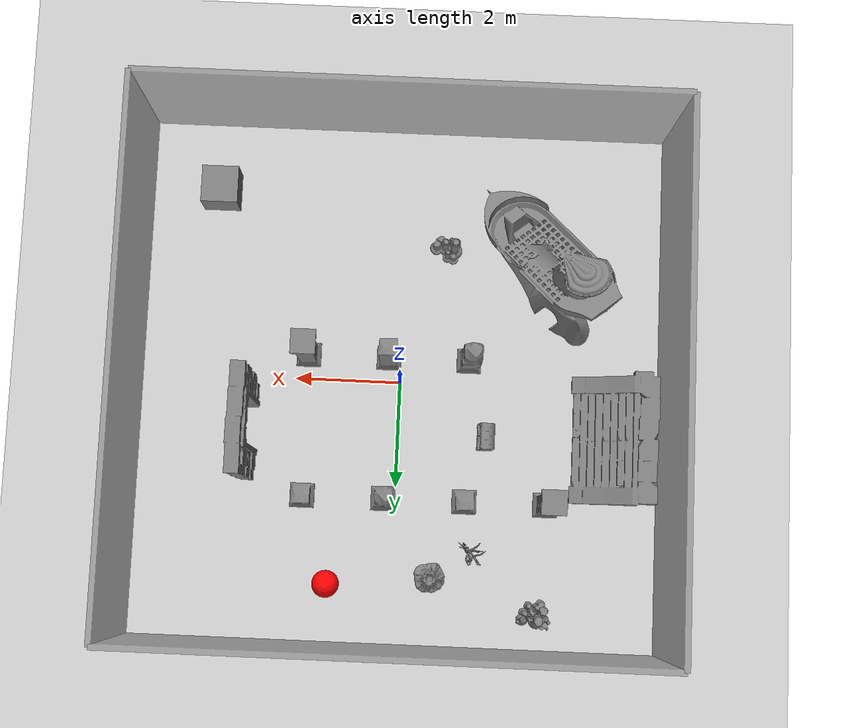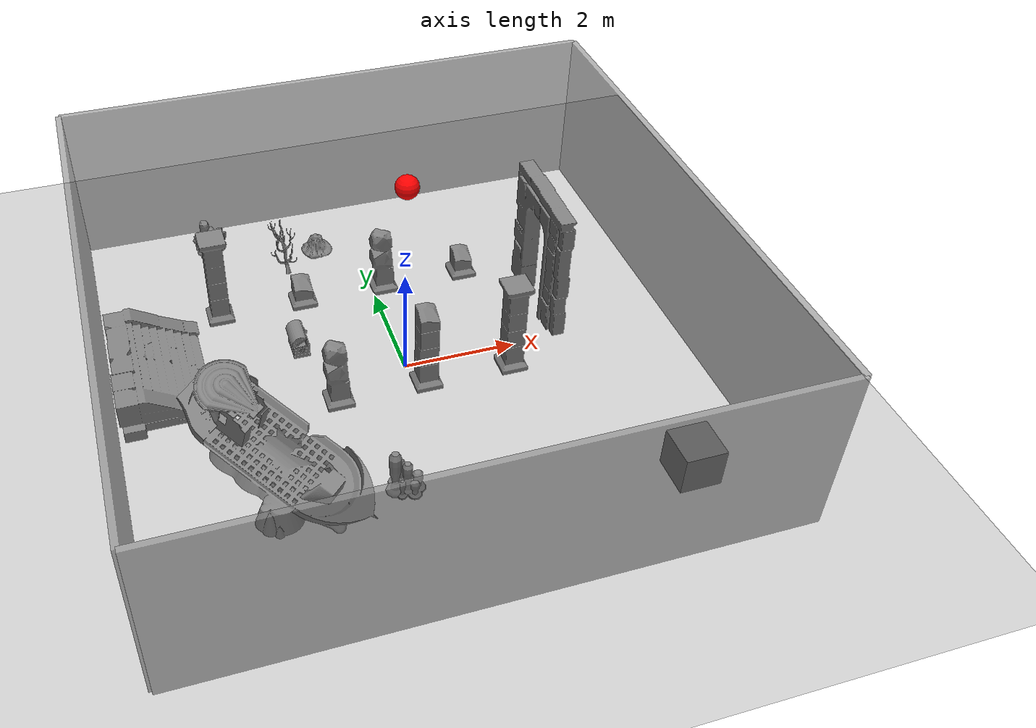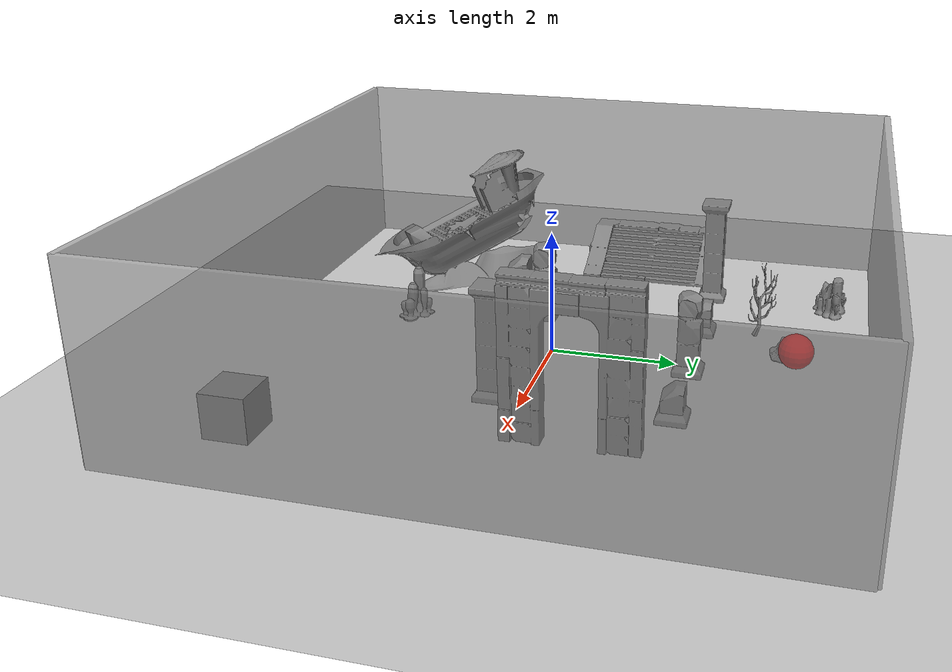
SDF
<sdf version="1.6">
 <world name="buoyancy">
  <physics name="1ms" type="ode">
   <max_step_size>0.001</max_step_size>
   <real_time_factor>1.0</real_time_factor>
  </physics>
  <plugin filename="gz-sim-physics-system" name="gz::sim::systems::Physics"/>
  <plugin filename="gz-sim-user-commands-system" name="gz::sim::systems::UserCommands"/>
  <plugin filename="gz-sim-scene-broadcaster-system" name="gz::sim::systems::SceneBroadcaster"/>
  <plugin filename="gz-sim-buoyancy-system" name="gz::sim::systems::Buoyancy">
   <uniform_fluid_density>1000</uniform_fluid_density>
   <enable>robot1</enable>
   <pose>0 0 1 0 0 0</pose>
  </plugin>
  <plugin filename="gz-sim-sensors-system" name="gz::sim::systems::Sensors">
   <render_engine>ogre2</render_engine>
  </plugin>
  <light type="directional" name="sun">
   <pose>0 0 3 0 0 0</pose>
   <diffuse>1 1 1 1</diffuse>
   <specular>0.5 0.5 0.5 1</specular>
   <attenuation>
    <range>1000</range>
    <constant>0.9</constant>
    <linear>0.01</linear>
    <quadratic>0.001</quadratic>
   </attenuation>
   <direction>-0.5 0.1 -0.9</direction>
  </light>
  <light type="directional" name="sun2">
   <pose>0 0 0.5 0 0 0</pose>
   <diffuse>1 1 1 1</diffuse>
   <specular>0.5 0.5 0.5 1</specular>
   <attenuation>
    <range>1000</range>
    <constant>0.9</constant>
    <linear>0.01</linear>
    <quadratic>0.001</quadratic>
   </attenuation>
   <direction>-0.5 0.1 -0.9</direction>
  </light>
  <model name="ground_plane">
   <static>true</static>
   <link name="link">
    <collision name="collision">
     <geometry><plane><normal>0 0 1</normal><size>20 20</size></plane></geometry>
    </collision>
    <visual name="visual">
     <geometry><plane><normal>0 0 1</normal><size>20 20</size></plane></geometry>
     <material>
      <ambient>0.8 0.8 0.8 1</ambient>
      <diffuse>0.8 0.8 0.8 1</diffuse>
      <specular>0.8 0.8 0.8 1</specular>
     </material>
    </visual>
   </link>
  </model>
  <model name="wall1">
   <pose>0 5 1.5 0 0 0</pose>
   <static>true</static>
   <link name="body">
    <visual name="body_visual">
     <geometry><box><size>10 0.1 3</size></box></geometry>
     <material><ambient>0.3 0.3 0.3 0.6</ambient><diffuse>0.5 0.5 0.5 0.6</diffuse></material>
    </visual>
    <collision name="body_collision"><geometry><box><size>10 0.1 4</size></box></geometry></collision>
   </link>
  </model>
  <model name="wall2">
   <pose>0 -5 1.5 0 0 0</pose>
   <static>true</static>
   <link name="body">
    <visual name="body_visual">
     <geometry><box><size>10 0.1 3</size></box></geometry>
     <material><ambient>0.3 0.3 0.3 0.6</ambient><diffuse>0.5 0.5 0.5 0.6</diffuse></material>
    </visual>
    <collision name="body_collision"><geometry><box><size>20 0.1 4</size></box></geometry></collision>
   </link>
  </model>
  <model name="wall3">
   <pose>5 0 1.5 0 0 0</pose>
   <static>true</static>
   <link name="body">
    <visual name="body_visual">
     <geometry><box><size>0.1 10 3</size></box></geometry>
     <material><ambient>0.3 0.3 0.3 0.6</ambient><diffuse>0.5 0.5 0.5 0.6</diffuse></material>
    </visual>
    <collision name="body_collision"><geometry><box><size>0.1 10 4</size></box></geometry></collision>
   </link>
  </model>
  <model name="wall4">
   <pose>-5 0 1.5 0 0 0</pose>
   <static>true</static>
   <link name="body">
    <visual name="body_visual">
     <geometry><box><size>0.1 10 3</size></box></geometry>
     <material><ambient>0.3 0.3 0.3 0.6</ambient><diffuse>0.5 0.5 0.5 0.6</diffuse></material>
    </visual>
    <collision name="body_collision"><geometry><box><size>0.1 10 4</size></box></geometry></collision>
   </link>
  </model>
  <model name="invis_plane">
   <pose>0 0 0.9 0 0 0</pose>
   <static>true</static>
   <link name="body">
    <collision name="body_collision">
     <geometry><box><size>10 10 0.1</size></box></geometry>
     <surface><friction><ode><mu>0.0</mu><mu2>0.0</mu2></ode></friction></surface>
    </collision>
   </link>
  </model>
  <model name="slope_and_steps">
   <static>true</static>
   <pose>-3.3 -0.4 -0.24 0 0 1.57</pose>
   <link name="body">
    <visual name="body_visual">
     <geometry>
      <mesh><scale>6 6 6</scale><uri>model://Teri_bot/meshes/visual/slope_and_steps.stl</uri></mesh>
     </geometry>
     <material><ambient>0.3 0.3 0.3 1</ambient><diffuse>0.5 0.5 0.5 1</diffuse></material>
    </visual>
    <collision name="body_collision">
     <geometry>
      <mesh><scale>6 6 6</scale><uri>model://Teri_bot/meshes/visual/slope_and_steps.stl</uri></mesh>
     </geometry>
    </collision>
   </link>
  </model>
  <model name="cube">
   <pose>3.6 -3.6 0.35 0 0 0</pose>
   <static>true</static>
   <link name="body">
    <visual name="body_visual">
     <geometry><box><size>0.7 0.7 0.7</size></box></geometry>
     <material><ambient>0.3 0.3 0.3 1</ambient><diffuse>0.5 0.5 0.5 1</diffuse></material>
    </visual>
    <collision name="body_collision"><geometry><box><size>1 1 1</size></box></geometry></collision>
   </link>
  </model>
  <model name="sphere">
   <static>true</static>
   <pose>1.2 3.85 1 0 0 0</pose>
   <link name="link">
    <visual name="visual">
     <geometry><sphere><radius>0.25</radius></sphere></geometry>
     <material><diffuse>1 0 0 1</diffuse></material>
    </visual>
    <collision name="collision"><geometry><sphere><radius>0.25</radius></sphere></geometry></collision>
   </link>
  </model>
  <model name="arch">
   <pose>3 0 0 0 0 1.57</pose>
   <static>true</static>
   <link name="body">
    <visual name="body_visual">
     <geometry><mesh><scale>4 4 4</scale><uri>model://Teri_bot/meshes/visual/arch.stl</uri></mesh></geometry>
     <material><ambient>0.3 0.3 0.3 1</ambient><diffuse>0.5 0.5 0.5 1</diffuse></material>
    </visual>
    <collision name="body_collision">
     <geometry><mesh><scale>4 4 4</scale><uri>model://Teri_bot/meshes/visual/arch.stl</uri></mesh></geometry>
    </collision>
   </link>
  </model>
  <model name="peristele1">
   <pose>1.54 -0.7 0 0 0 0</pose>
   <static>true</static>
   <link name="body">
    <visual name="body_visual">
     <geometry><mesh><scale>6 6 6</scale><uri>model://Teri_bot/meshes/visual/peristele1.STL</uri></mesh></geometry>
     <material><ambient>0.3 0.3 0.3 1</ambient><diffuse>0.5 0.5 0.5 1</diffuse></material>
    </visual>
    <collision name="body_collision">
     <geometry><mesh><scale>6 6 6</scale><uri>model://Teri_bot/meshes/visual/peristele1.STL</uri></mesh></geometry>
    </collision>
   </link>
  </model>
  <model name="peristele2">
   <pose>1.54 2 0 0 0 0</pose>
   <static>true</static>
   <link name="body">
    <visual name="body_visual">
     <geometry><mesh><scale>6 6 6</scale><uri>model://Teri_bot/meshes/visual/peristele2.STL</uri></mesh></geometry>
     <material><ambient>0.3 0.3 0.3 1</ambient><diffuse>0.5 0.5 0.5 1</diffuse></material>
    </visual>
    <collision name="body_collision">
     <geometry><mesh><scale>6 6 6</scale><uri>model://Teri_bot/meshes/visual/peristele2.STL</uri></mesh></geometry>
    </collision>
   </link>
  </model>
  <model name="peristele3">
   <pose>0 -0.7 0 0 0 0</pose>
   <static>true</static>
   <link name="body">
    <visual name="body_visual">
     <geometry><mesh><scale>6 6 6</scale><uri>model://Teri_bot/meshes/visual/peristele3.STL</uri></mesh></geometry>
     <material><ambient>0.3 0.3 0.3 1</ambient><diffuse>0.5 0.5 0.5 1</diffuse></material>
    </visual>
    <collision name="body_collision">
     <geometry><mesh><scale>6 6 6</scale><uri>model://Teri_bot/meshes/visual/peristele3.STL</uri></mesh></geometry>
    </collision>
   </link>
  </model>
  <model name="peristele4">
   <pose>0 2 0 0 0 0</pose>
   <static>true</static>
   <link name="body">
    <visual name="body_visual">
     <geometry><mesh><scale>6 6 6</scale><uri>model://Teri_bot/meshes/visual/peristele4.STL</uri></mesh></geometry>
     <material><ambient>0.3 0.3 0.3 1</ambient><diffuse>0.5 0.5 0.5 1</diffuse></material>
    </visual>
    <collision name="body_collision">
     <geometry><mesh><scale>6 6 6</scale><uri>model://Teri_bot/meshes/visual/peristele4.STL</uri></mesh></geometry>
    </collision>
   </link>
  </model>
  <model name="peristele5">
   <pose>-1.54 -0.7 0 0 0 0</pose>
   <static>true</static>
   <link name="body">
    <visual name="body_visual">
     <geometry><mesh><scale>6 6 6</scale><uri>model://Teri_bot/meshes/visual/peristele4.STL</uri></mesh></geometry>
     <material><ambient>0.3 0.3 0.3 1</ambient><diffuse>0.5 0.5 0.5 1</diffuse></material>
    </visual>
    <collision name="body_collision">
     <geometry><mesh><scale>6 6 6</scale><uri>model://Teri_bot/meshes/visual/peristele4.STL</uri></mesh></geometry>
    </collision>
   </link>
  </model>
  <model name="peristele6">
   <pose>-1.54 2 0 0 0 0</pose>
   <static>true</static>
   <link name="body">
    <visual name="body_visual">
     <geometry><mesh><scale>6 6 6</scale><uri>model://Teri_bot/meshes/visual/peristele2.STL</uri></mesh></geometry>
     <material><ambient>0.3 0.3 0.3 1</ambient><diffuse>0.5 0.5 0.5 1</diffuse></material>
    </visual>
    <collision name="body_collision">
     <geometry><mesh><scale>6 6 6</scale><uri>model://Teri_bot/meshes/visual/peristele2.STL</uri></mesh></geometry>
    </collision>
   </link>
  </model>
  <model name="peristele7">
   <pose>-3.08 2 0 0 0 0</pose>
   <static>true</static>
   <link name="body">
    <visual name="body_visual">
     <geometry><mesh><scale>6 6 6</scale><uri>model://Teri_bot/meshes/visual/peristele1.STL</uri></mesh></geometry>
     <material><ambient>0.3 0.3 0.3 1</ambient><diffuse>0.5 0.5 0.5 1</diffuse></material>
    </visual>
    <collision name="body_collision">
     <geometry><mesh><scale>6 6 6</scale><uri>model://Teri_bot/meshes/visual/peristele1.STL</uri></mesh></geometry>
    </collision>
   </link>
  </model>
  <model name="stone1">
   <static>true</static>
   <pose>-1 3.4 0 0 0 0</pose>
   <link name="body">
    <visual name="body_visual">
     <geometry><mesh><scale>4 4 4</scale><uri>model://Teri_bot/meshes/visual/stone1.STL</uri></mesh></geometry>
     <material><ambient>0.3 0.3 0.3 1</ambient><diffuse>0.5 0.5 0.5 1</diffuse></material>
    </visual>
    <collision name="body_collision">
     <geometry><mesh><scale>4 4 4</scale><uri>model://Teri_bot/meshes/visual/stone1.STL</uri></mesh></geometry>
    </collision>
   </link>
  </model>
  <model name="coral1">
   <static>true</static>
   <pose>-3 4 0 0 0 0</pose>
   <link name="body">
    <visual name="body_visual">
     <geometry><mesh><scale>25 25 25</scale><uri>model://Teri_bot/meshes/visual/coral1.STL</uri></mesh></geometry>
     <material><ambient>0.3 0.3 0.3 1</ambient><diffuse>0.5 0.5 0.5 1</diffuse></material>
    </visual>
    <collision name="body_collision">
     <geometry><mesh><scale>25 25 25</scale><uri>model://Teri_bot/meshes/visual/coral1.STL</uri></mesh></geometry>
    </collision>
   </link>
  </model>
  <model name="coral2">
   <static>true</static>
   <pose>-1.7 3 0 0 0 0</pose>
   <link name="body">
    <visual name="body_visual">
     <geometry><mesh><scale>1 1 1</scale><uri>model://Teri_bot/meshes/visual/coral2.STL</uri></mesh></geometry>
     <material><ambient>0.3 0.3 0.3 1</ambient><diffuse>0.5 0.5 0.5 1</diffuse></material>
    </visual>
    <collision name="body_collision">
     <geometry><mesh><scale>1 1 1</scale><uri>model://Teri_bot/meshes/visual/coral2.STL</uri></mesh></geometry>
    </collision>
   </link>
  </model>
  <model name="coral3">
   <static>true</static>
   <pose>-1.1 -2.9 0 0 0 0</pose>
   <link name="body">
    <visual name="body_visual">
     <geometry><mesh><scale>25 25 25</scale><uri>model://Teri_bot/meshes/visual/coral3.STL</uri></mesh></geometry>
     <material><ambient>0.3 0.3 0.3 1</ambient><diffuse>0.5 0.5 0.5 1</diffuse></material>
    </visual>
    <collision name="body_collision">
     <geometry><mesh><scale>25 25 25</scale><uri>model://Teri_bot/meshes/visual/coral3.STL</uri></mesh></geometry>
    </collision>
   </link>
  </model>
  <model name="treasure_box">
   <static>true</static>
   <pose>-5.4 2 0 0 0 1.57</pose>
   <link name="body">
    <visual name="body_visual">
     <geometry>
      <mesh><scale>3.5 3.5 3.5</scale><uri>model://Teri_bot/meshes/visual/treasure_box.stl</uri></mesh>
     </geometry>
     <material><ambient>0.3 0.3 0.3 1</ambient><diffuse>0.5 0.5 0.5 1</diffuse></material>
    </visual>
    <collision name="body_collision">
     <geometry>
      <mesh><scale>3.5 3.5 3.5</scale><uri>model://Teri_bot/meshes/visual/treasure_box.stl</uri></mesh>
     </geometry>
    </collision>
   </link>
  </model>
  <model name="shipwreck">
   <static>true</static>
   <pose>-2.17 -4.19 0 1.5708 0 2.23</pose>
   <link name="body">
    <visual name="body_visual">
     <geometry>
      <mesh><scale>6.5 6.5 6.5</scale><uri>model://Teri_bot/meshes/visual/shipwreck.STL</uri></mesh>
     </geometry>
     <material><ambient>0.3 0.3 0.3 1</ambient><diffuse>0.5 0.5 0.5 1</diffuse></material>
    </visual>
    <collision name="body_collision">
     <geometry>
      <mesh><scale>6.5 6.5 6.5</scale><uri>model://Teri_bot/meshes/visual/shipwreck.STL</uri></mesh>
     </geometry>
    </collision>
   </link>
  </model>
 </world>
</sdf>
